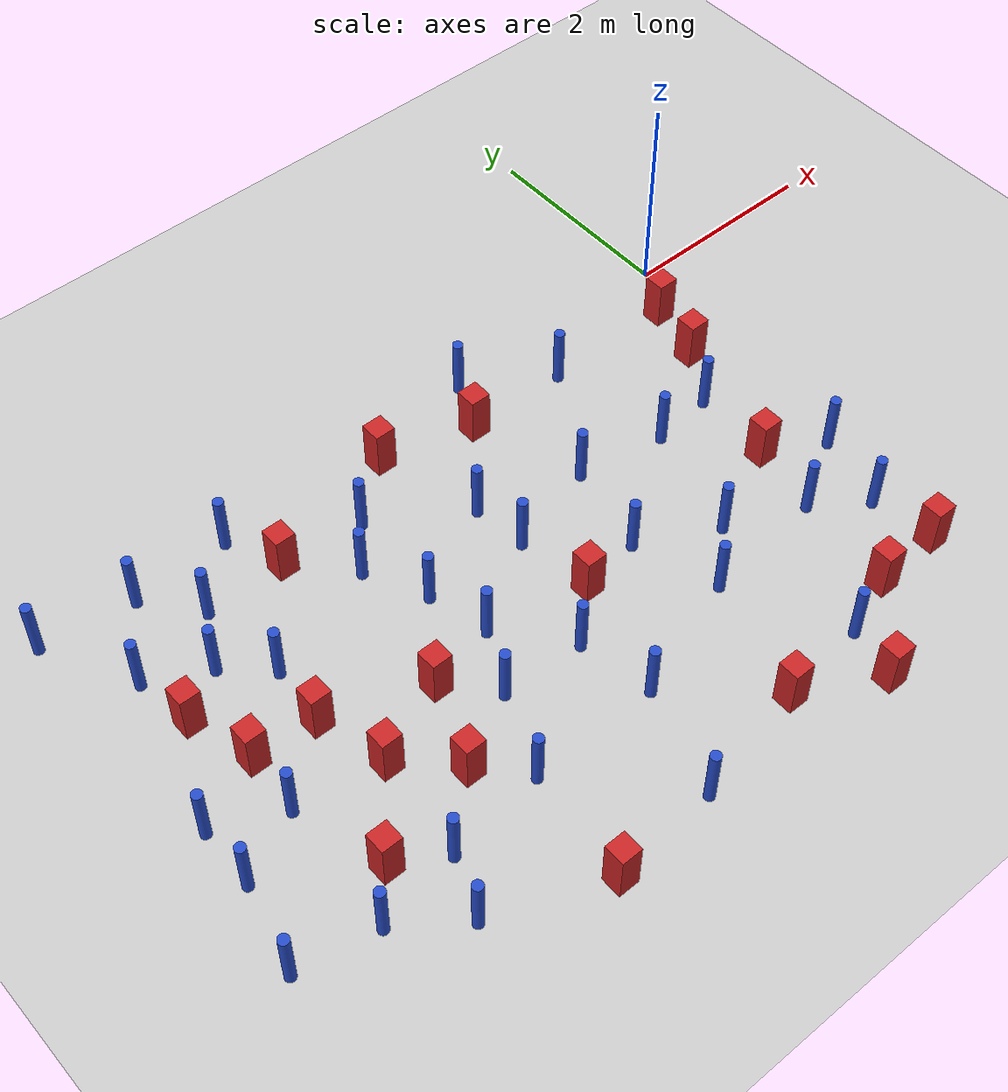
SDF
<sdf version="1.6">
 <world name="default">
  <model name="ground_plane">
   <static>1</static>
   <link name="link">
    <collision name="collision">
     <geometry><plane><normal>0 0 1</normal><size>100 100</size></plane></geometry>
     <surface><friction><ode><mu>100</mu><mu2>50</mu2></ode></friction></surface>
    </collision>
    <visual name="visual">
     <cast_shadows>0</cast_shadows>
     <geometry><plane><normal>0 0 1</normal><size>100 100</size></plane></geometry>
     <material>
      <ambient>1.0 1.0 1.0 1.0</ambient>
      <diffuse>0.8 0.8 0.8 1.0</diffuse>
      <specular>0.01 0.01 0.01 1.000000</specular>
     </material>
    </visual>
   </link>
  </model>
  <model name="pole_obstacle2">
   <static>true</static>
   <pose>-5.47846547494 -1.4591798869 2.88873142074e-08 -9.90536689445e-09 4.60219948999e-07 -1.20965994956e-07</pose>
   <link name="link">
    <pose>0 0 0.3 0 -0 0</pose>
    <inertial>
     <mass>1</mass>
     <inertia><ixx>0.145833</ixx><ixy>0</ixy><ixz>0</ixz><iyy>0.145833</iyy><iyz>0</iyz><izz>0.125</izz></inertia>
    </inertial>
    <collision name="collision">
     <geometry><cylinder><radius>0.05</radius><length>.6</length></cylinder></geometry>
    </collision>
    <visual name="visual">
     <geometry><cylinder><radius>0.05</radius><length>.6</length></cylinder></geometry>
     <material>
      <script><name>Gazebo/Blue</name><uri>file://media/materials/scripts/gazebo.material</uri></script>
     </material>
    </visual>
   </link>
  </model>
  <model name="pole_obstacle7">
   <static>true</static>
   <pose>-2.39501589239 -2.36706867355 2.88873142074e-08 -9.90536690232e-09 4.6021994898e-07 -1.20965994968e-07</pose>
   <link name="link">
    <pose>0 0 0.3 0 -0 0</pose>
    <inertial>
     <mass>1</mass>
     <inertia><ixx>0.145833</ixx><ixy>0</ixy><ixz>0</ixz><iyy>0.145833</iyy><iyz>0</iyz><izz>0.125</izz></inertia>
    </inertial>
    <collision name="collision">
     <geometry><cylinder><radius>0.05</radius><length>.6</length></cylinder></geometry>
    </collision>
    <visual name="visual">
     <geometry><cylinder><radius>0.05</radius><length>.6</length></cylinder></geometry>
     <material>
      <script><name>Gazebo/Blue</name><uri>file://media/materials/scripts/gazebo.material</uri></script>
     </material>
    </visual>
   </link>
  </model>
  <model name="pole_obstacle9">
   <static>true</static>
   <pose>-5.67694998414 -4.2069552184 2.88873142074e-08 -9.90536690842e-09 4.60219948965e-07 -1.20965994976e-07</pose>
   <link name="link">
    <pose>0 0 0.3 0 -0 0</pose>
    <inertial>
     <mass>1</mass>
     <inertia><ixx>0.145833</ixx><ixy>0</ixy><ixz>0</ixz><iyy>0.145833</iyy><iyz>0</iyz><izz>0.125</izz></inertia>
    </inertial>
    <collision name="collision">
     <geometry><cylinder><radius>0.05</radius><length>.6</length></cylinder></geometry>
    </collision>
    <visual name="visual">
     <geometry><cylinder><radius>0.05</radius><length>.6</length></cylinder></geometry>
     <material>
      <script><name>Gazebo/Blue</name><uri>file://media/materials/scripts/gazebo.material</uri></script>
     </material>
    </visual>
   </link>
  </model>
  <model name="pole_obstacle12">
   <static>true</static>
   <pose>-2.20198437938 -1.49410046 2.88873142074e-08 -9.90536689395e-09 4.60219949e-07 -1.20965994953e-07</pose>
   <link name="link">
    <pose>0 0 0.3 0 -0 0</pose>
    <inertial>
     <mass>1</mass>
     <inertia><ixx>0.145833</ixx><ixy>0</ixy><ixz>0</ixz><iyy>0.145833</iyy><iyz>0</iyz><izz>0.125</izz></inertia>
    </inertial>
    <collision name="collision">
     <geometry><cylinder><radius>0.05</radius><length>.6</length></cylinder></geometry>
    </collision>
    <visual name="visual">
     <geometry><cylinder><radius>0.05</radius><length>.6</length></cylinder></geometry>
     <material>
      <script><name>Gazebo/Blue</name><uri>file://media/materials/scripts/gazebo.material</uri></script>
     </material>
    </visual>
   </link>
  </model>
  <model name="pole_obstacle17">
   <static>true</static>
   <pose>-2.13248471283 -3.16546060111 2.88873142074e-08 -9.90536690232e-09 4.6021994898e-07 -1.20965994968e-07</pose>
   <link name="link">
    <pose>0 0 0.3 0 -0 0</pose>
    <inertial>
     <mass>1</mass>
     <inertia><ixx>0.145833</ixx><ixy>0</ixy><ixz>0</ixz><iyy>0.145833</iyy><iyz>0</iyz><izz>0.125</izz></inertia>
    </inertial>
    <collision name="collision">
     <geometry><cylinder><radius>0.05</radius><length>.6</length></cylinder></geometry>
    </collision>
    <visual name="visual">
     <geometry><cylinder><radius>0.05</radius><length>.6</length></cylinder></geometry>
     <material>
      <script><name>Gazebo/Blue</name><uri>file://media/materials/scripts/gazebo.material</uri></script>
     </material>
    </visual>
   </link>
  </model>
  <model name="square_post_obstacle14">
   <static>true</static>
   <pose>-0.396960825578 -3.98718183676 8.22691968438e-08 7.22125133819e-06 -7.54495500217e-07 2.29674213826e-05</pose>
   <link name="link">
    <pose>0 0 0.25 0 -0 0</pose>
    <inertial>
     <mass>100</mass>
     <inertia>
      <ixx>0.166667</ixx>
      <ixy>0</ixy>
      <ixz>0</ixz>
      <iyy>0.166667</iyy>
      <iyz>0</iyz>
      <izz>0.166667</izz>
     </inertia>
    </inertial>
    <collision name="collision"><geometry><box><size>.2 .2 .5</size></box></geometry></collision>
    <visual name="visual">
     <geometry><box><size>.2 .2 .5</size></box></geometry>
     <material>
      <script><name>Gazebo/Red</name><uri>file://media/materials/scripts/gazebo.material</uri></script>
     </material>
    </visual>
   </link>
  </model>
  <model name="pole_obstacle36">
   <static>true</static>
   <pose>-4.3431573789 -1.09699216679 2.88873142074e-08 -9.90536689445e-09 4.60219948999e-07 -1.20965994956e-07</pose>
   <link name="link">
    <pose>0 0 0.3 0 -0 0</pose>
    <inertial>
     <mass>1</mass>
     <inertia><ixx>0.145833</ixx><ixy>0</ixy><ixz>0</ixz><iyy>0.145833</iyy><iyz>0</iyz><izz>0.125</izz></inertia>
    </inertial>
    <collision name="collision">
     <geometry><cylinder><radius>0.05</radius><length>.6</length></cylinder></geometry>
    </collision>
    <visual name="visual">
     <geometry><cylinder><radius>0.05</radius><length>.6</length></cylinder></geometry>
     <material>
      <script><name>Gazebo/Blue</name><uri>file://media/materials/scripts/gazebo.material</uri></script>
     </material>
    </visual>
   </link>
  </model>
  <model name="pole_obstacle37">
   <static>true</static>
   <pose>-6.40705415362 -0.817425480912 2.88873142074e-08 -9.90536689837e-09 4.60219948989e-07 -1.2096599496e-07</pose>
   <link name="link">
    <pose>0 0 0.3 0 -0 0</pose>
    <inertial>
     <mass>1</mass>
     <inertia><ixx>0.145833</ixx><ixy>0</ixy><ixz>0</ixz><iyy>0.145833</iyy><iyz>0</iyz><izz>0.125</izz></inertia>
    </inertial>
    <collision name="collision">
     <geometry><cylinder><radius>0.05</radius><length>.6</length></cylinder></geometry>
    </collision>
    <visual name="visual">
     <geometry><cylinder><radius>0.05</radius><length>.6</length></cylinder></geometry>
     <material>
      <script><name>Gazebo/Blue</name><uri>file://media/materials/scripts/gazebo.material</uri></script>
     </material>
    </visual>
   </link>
  </model>
  <model name="pole_obstacle48">
   <static>true</static>
   <pose>-5.57795164293 -0.592030560609 2.88873142074e-08 -9.90536689837e-09 4.60219948989e-07 -1.2096599496e-07</pose>
   <link name="link">
    <pose>0 0 0.3 0 -0 0</pose>
    <inertial>
     <mass>1</mass>
     <inertia><ixx>0.145833</ixx><ixy>0</ixy><ixz>0</ixz><iyy>0.145833</iyy><iyz>0</iyz><izz>0.125</izz></inertia>
    </inertial>
    <collision name="collision">
     <geometry><cylinder><radius>0.05</radius><length>.6</length></cylinder></geometry>
    </collision>
    <visual name="visual">
     <geometry><cylinder><radius>0.05</radius><length>.6</length></cylinder></geometry>
     <material>
      <script><name>Gazebo/Blue</name><uri>file://media/materials/scripts/gazebo.material</uri></script>
     </material>
    </visual>
   </link>
  </model>
  <model name="pole_obstacle50">
   <static>true</static>
   <pose>-4.21921542562 -2.81185399373 2.88873142074e-08 -9.90536690245e-09 4.6021994898e-07 -1.20965994966e-07</pose>
   <link name="link">
    <pose>0 0 0.3 0 -0 0</pose>
    <inertial>
     <mass>1</mass>
     <inertia><ixx>0.145833</ixx><ixy>0</ixy><ixz>0</ixz><iyy>0.145833</iyy><iyz>0</iyz><izz>0.125</izz></inertia>
    </inertial>
    <collision name="collision">
     <geometry><cylinder><radius>0.05</radius><length>.6</length></cylinder></geometry>
    </collision>
    <visual name="visual">
     <geometry><cylinder><radius>0.05</radius><length>.6</length></cylinder></geometry>
     <material>
      <script><name>Gazebo/Blue</name><uri>file://media/materials/scripts/gazebo.material</uri></script>
     </material>
    </visual>
   </link>
  </model>
  <model name="pole_obstacle51">
   <static>true</static>
   <pose>-3.42958910382 -2.85291495817 2.88873142074e-08 -9.90536689597e-09 4.60219948995e-07 -1.20965994957e-07</pose>
   <link name="link">
    <pose>0 0 0.3 0 -0 0</pose>
    <inertial>
     <mass>1</mass>
     <inertia><ixx>0.145833</ixx><ixy>0</ixy><ixz>0</ixz><iyy>0.145833</iyy><iyz>0</iyz><izz>0.125</izz></inertia>
    </inertial>
    <collision name="collision">
     <geometry><cylinder><radius>0.05</radius><length>.6</length></cylinder></geometry>
    </collision>
    <visual name="visual">
     <geometry><cylinder><radius>0.05</radius><length>.6</length></cylinder></geometry>
     <material>
      <script><name>Gazebo/Blue</name><uri>file://media/materials/scripts/gazebo.material</uri></script>
     </material>
    </visual>
   </link>
  </model>
  <model name="pole_obstacle62">
   <static>true</static>
   <pose>-3.61412440753 -4.54910075798 2.88873142074e-08 -9.90536689859e-09 4.60219948989e-07 -1.20965994961e-07</pose>
   <link name="link">
    <pose>0 0 0.3 0 -0 0</pose>
    <inertial>
     <mass>1</mass>
     <inertia><ixx>0.145833</ixx><ixy>0</ixy><ixz>0</ixz><iyy>0.145833</iyy><iyz>0</iyz><izz>0.125</izz></inertia>
    </inertial>
    <collision name="collision">
     <geometry><cylinder><radius>0.05</radius><length>.6</length></cylinder></geometry>
    </collision>
    <visual name="visual">
     <geometry><cylinder><radius>0.05</radius><length>.6</length></cylinder></geometry>
     <material>
      <script><name>Gazebo/Blue</name><uri>file://media/materials/scripts/gazebo.material</uri></script>
     </material>
    </visual>
   </link>
  </model>
  <model name="square_post_obstacle49">
   <static>true</static>
   <pose>-2.56475902144 -0.460987065026 8.22691968438e-08 7.2212513382e-06 -7.54495500217e-07 2.29674213826e-05</pose>
   <link name="link">
    <pose>0 0 0.25 0 -0 0</pose>
    <inertial>
     <mass>100</mass>
     <inertia>
      <ixx>0.166667</ixx>
      <ixy>0</ixy>
      <ixz>0</ixz>
      <iyy>0.166667</iyy>
      <iyz>0</iyz>
      <izz>0.166667</izz>
     </inertia>
    </inertial>
    <collision name="collision"><geometry><box><size>.2 .2 .5</size></box></geometry></collision>
    <visual name="visual">
     <geometry><box><size>.2 .2 .5</size></box></geometry>
     <material>
      <script><name>Gazebo/Red</name><uri>file://media/materials/scripts/gazebo.material</uri></script>
     </material>
    </visual>
   </link>
  </model>
  <model name="square_post_obstacle53">
   <static>true</static>
   <pose>-1.06489842813 -4.03133479153 8.22691968438e-08 7.2212513382e-06 -7.54495500217e-07 2.29674213826e-05</pose>
   <link name="link">
    <pose>0 0 0.25 0 -0 0</pose>
    <inertial>
     <mass>100</mass>
     <inertia>
      <ixx>0.166667</ixx>
      <ixy>0</ixy>
      <ixz>0</ixz>
      <iyy>0.166667</iyy>
      <iyz>0</iyz>
      <izz>0.166667</izz>
     </inertia>
    </inertial>
    <collision name="collision"><geometry><box><size>.2 .2 .5</size></box></geometry></collision>
    <visual name="visual">
     <geometry><box><size>.2 .2 .5</size></box></geometry>
     <material>
      <script><name>Gazebo/Red</name><uri>file://media/materials/scripts/gazebo.material</uri></script>
     </material>
    </visual>
   </link>
  </model>
  <model name="pole_obstacle69">
   <static>true</static>
   <pose>-5.85827670572 -1.09774539539 2.88873142074e-08 -9.90536689445e-09 4.60219948999e-07 -1.20965994956e-07</pose>
   <link name="link">
    <pose>0 0 0.3 0 -0 0</pose>
    <inertial>
     <mass>1</mass>
     <inertia><ixx>0.145833</ixx><ixy>0</ixy><ixz>0</ixz><iyy>0.145833</iyy><iyz>0</iyz><izz>0.125</izz></inertia>
    </inertial>
    <collision name="collision">
     <geometry><cylinder><radius>0.05</radius><length>.6</length></cylinder></geometry>
    </collision>
    <visual name="visual">
     <geometry><cylinder><radius>0.05</radius><length>.6</length></cylinder></geometry>
     <material>
      <script><name>Gazebo/Blue</name><uri>file://media/materials/scripts/gazebo.material</uri></script>
     </material>
    </visual>
   </link>
  </model>
  <model name="square_post_obstacle63">
   <static>true</static>
   <pose>-0.441353842119 -1.06322872604 8.22691968438e-08 7.22125133819e-06 -7.54495500217e-07 2.29674213826e-05</pose>
   <link name="link">
    <pose>0 0 0.25 0 -0 0</pose>
    <inertial>
     <mass>100</mass>
     <inertia>
      <ixx>0.166667</ixx>
      <ixy>0</ixy>
      <ixz>0</ixz>
      <iyy>0.166667</iyy>
      <iyz>0</iyz>
      <izz>0.166667</izz>
     </inertia>
    </inertial>
    <collision name="collision"><geometry><box><size>.2 .2 .5</size></box></geometry></collision>
    <visual name="visual">
     <geometry><box><size>.2 .2 .5</size></box></geometry>
     <material>
      <script><name>Gazebo/Red</name><uri>file://media/materials/scripts/gazebo.material</uri></script>
     </material>
    </visual>
   </link>
  </model>
  <model name="square_post_obstacle69">
   <static>true</static>
   <pose>-2.98584578917 -2.44960622711 8.22691968438e-08 7.2212513382e-06 -7.54495500217e-07 2.29674213826e-05</pose>
   <link name="link">
    <pose>0 0 0.25 0 -0 0</pose>
    <inertial>
     <mass>100</mass>
     <inertia>
      <ixx>0.166667</ixx>
      <ixy>0</ixy>
      <ixz>0</ixz>
      <iyy>0.166667</iyy>
      <iyz>0</iyz>
      <izz>0.166667</izz>
     </inertia>
    </inertial>
    <collision name="collision"><geometry><box><size>.2 .2 .5</size></box></geometry></collision>
    <visual name="visual">
     <geometry><box><size>.2 .2 .5</size></box></geometry>
     <material>
      <script><name>Gazebo/Red</name><uri>file://media/materials/scripts/gazebo.material</uri></script>
     </material>
    </visual>
   </link>
  </model>
  <model name="square_post_obstacle73">
   <static>true</static>
   <pose>-4.59540827341 -2.39774058924 8.22691968438e-08 7.2212513382e-06 -7.54495500217e-07 2.29674213826e-05</pose>
   <link name="link">
    <pose>0 0 0.25 0 -0 0</pose>
    <inertial>
     <mass>100</mass>
     <inertia>
      <ixx>0.166667</ixx>
      <ixy>0</ixy>
      <ixz>0</ixz>
      <iyy>0.166667</iyy>
      <iyz>0</iyz>
      <izz>0.166667</izz>
     </inertia>
    </inertial>
    <collision name="collision"><geometry><box><size>.2 .2 .5</size></box></geometry></collision>
    <visual name="visual">
     <geometry><box><size>.2 .2 .5</size></box></geometry>
     <material>
      <script><name>Gazebo/Red</name><uri>file://media/materials/scripts/gazebo.material</uri></script>
     </material>
    </visual>
   </link>
  </model>
  <model name="square_post_obstacle74">
   <static>true</static>
   <pose>-5.9097521893 -3.41296863932 8.22691968438e-08 7.2212513382e-06 -7.54495500217e-07 2.29674213826e-05</pose>
   <link name="link">
    <pose>0 0 0.25 0 -0 0</pose>
    <inertial>
     <mass>100</mass>
     <inertia>
      <ixx>0.166667</ixx>
      <ixy>0</ixy>
      <ixz>0</ixz>
      <iyy>0.166667</iyy>
      <iyz>0</iyz>
      <izz>0.166667</izz>
     </inertia>
    </inertial>
    <collision name="collision"><geometry><box><size>.2 .2 .5</size></box></geometry></collision>
    <visual name="visual">
     <geometry><box><size>.2 .2 .5</size></box></geometry>
     <material>
      <script><name>Gazebo/Red</name><uri>file://media/materials/scripts/gazebo.material</uri></script>
     </material>
    </visual>
   </link>
  </model>
  <model name="pole_obstacle99">
   <static>true</static>
   <pose>-5.46050959873 -3.66921437932 2.88873142074e-08 -9.90536690245e-09 4.6021994898e-07 -1.20965994966e-07</pose>
   <link name="link">
    <pose>0 0 0.3 0 -0 0</pose>
    <inertial>
     <mass>1</mass>
     <inertia><ixx>0.145833</ixx><ixy>0</ixy><ixz>0</ixz><iyy>0.145833</iyy><iyz>0</iyz><izz>0.125</izz></inertia>
    </inertial>
    <collision name="collision">
     <geometry><cylinder><radius>0.05</radius><length>.6</length></cylinder></geometry>
    </collision>
    <visual name="visual">
     <geometry><cylinder><radius>0.05</radius><length>.6</length></cylinder></geometry>
     <material>
      <script><name>Gazebo/Blue</name><uri>file://media/materials/scripts/gazebo.material</uri></script>
     </material>
    </visual>
   </link>
  </model>
  <model name="pole_obstacle101">
   <static>true</static>
   <pose>-1.55824635545 -0.470808951213 2.88873142074e-08 -9.90536689816e-09 4.6021994899e-07 -1.2096599496e-07</pose>
   <link name="link">
    <pose>0 0 0.3 0 -0 0</pose>
    <inertial>
     <mass>1</mass>
     <inertia><ixx>0.145833</ixx><ixy>0</ixy><ixz>0</ixz><iyy>0.145833</iyy><iyz>0</iyz><izz>0.125</izz></inertia>
    </inertial>
    <collision name="collision">
     <geometry><cylinder><radius>0.05</radius><length>.6</length></cylinder></geometry>
    </collision>
    <visual name="visual">
     <geometry><cylinder><radius>0.05</radius><length>.6</length></cylinder></geometry>
     <material>
      <script><name>Gazebo/Blue</name><uri>file://media/materials/scripts/gazebo.material</uri></script>
     </material>
    </visual>
   </link>
  </model>
  <model name="pole_obstacle110">
   <static>true</static>
   <pose>-4.52986368785 -3.56269048437 2.88873142074e-08 -9.90536690245e-09 4.6021994898e-07 -1.20965994966e-07</pose>
   <link name="link">
    <pose>0 0 0.3 0 -0 0</pose>
    <inertial>
     <mass>1</mass>
     <inertia><ixx>0.145833</ixx><ixy>0</ixy><ixz>0</ixz><iyy>0.145833</iyy><iyz>0</iyz><izz>0.125</izz></inertia>
    </inertial>
    <collision name="collision">
     <geometry><cylinder><radius>0.05</radius><length>.6</length></cylinder></geometry>
    </collision>
    <visual name="visual">
     <geometry><cylinder><radius>0.05</radius><length>.6</length></cylinder></geometry>
     <material>
      <script><name>Gazebo/Blue</name><uri>file://media/materials/scripts/gazebo.material</uri></script>
     </material>
    </visual>
   </link>
  </model>
  <model name="pole_obstacle113">
   <static>true</static>
   <pose>-0.939949511306 -3.04380701879 2.88873142074e-08 -9.90536689636e-09 4.60219948994e-07 -1.20965994958e-07</pose>
   <link name="link">
    <pose>0 0 0.3 0 -0 0</pose>
    <inertial>
     <mass>1</mass>
     <inertia><ixx>0.145833</ixx><ixy>0</ixy><ixz>0</ixz><iyy>0.145833</iyy><iyz>0</iyz><izz>0.125</izz></inertia>
    </inertial>
    <collision name="collision">
     <geometry><cylinder><radius>0.05</radius><length>.6</length></cylinder></geometry>
    </collision>
    <visual name="visual">
     <geometry><cylinder><radius>0.05</radius><length>.6</length></cylinder></geometry>
     <material>
      <script><name>Gazebo/Blue</name><uri>file://media/materials/scripts/gazebo.material</uri></script>
     </material>
    </visual>
   </link>
  </model>
  <model name="square_post_obstacle118">
   <static>true</static>
   <pose>-4.81098748998 -0.602729627563 8.22691968438e-08 7.2212513382e-06 -7.54495500217e-07 2.29674213826e-05</pose>
   <link name="link">
    <pose>0 0 0.25 0 -0 0</pose>
    <inertial>
     <mass>100</mass>
     <inertia>
      <ixx>0.166667</ixx>
      <ixy>0</ixy>
      <ixz>0</ixz>
      <iyy>0.166667</iyy>
      <iyz>0</iyz>
      <izz>0.166667</izz>
     </inertia>
    </inertial>
    <collision name="collision"><geometry><box><size>.2 .2 .5</size></box></geometry></collision>
    <visual name="visual">
     <geometry><box><size>.2 .2 .5</size></box></geometry>
     <material>
      <script><name>Gazebo/Red</name><uri>file://media/materials/scripts/gazebo.material</uri></script>
     </material>
    </visual>
   </link>
  </model>
  <model name="pole_obstacle118">
   <static>true</static>
   <pose>-3.3009172358 -3.55679530675 2.88873142074e-08 -9.90536690232e-09 4.6021994898e-07 -1.20965994968e-07</pose>
   <link name="link">
    <pose>0 0 0.3 0 -0 0</pose>
    <inertial>
     <mass>1</mass>
     <inertia><ixx>0.145833</ixx><ixy>0</ixy><ixz>0</ixz><iyy>0.145833</iyy><iyz>0</iyz><izz>0.125</izz></inertia>
    </inertial>
    <collision name="collision">
     <geometry><cylinder><radius>0.05</radius><length>.6</length></cylinder></geometry>
    </collision>
    <visual name="visual">
     <geometry><cylinder><radius>0.05</radius><length>.6</length></cylinder></geometry>
     <material>
      <script><name>Gazebo/Blue</name><uri>file://media/materials/scripts/gazebo.material</uri></script>
     </material>
    </visual>
   </link>
  </model>
  <model name="pole_obstacle123">
   <static>true</static>
   <pose>-5.04307198198 -0.0760159153711 2.88873142074e-08 -9.90536689832e-09 4.60219948989e-07 -1.20965994961e-07</pose>
   <link name="link">
    <pose>0 0 0.3 0 -0 0</pose>
    <inertial>
     <mass>1</mass>
     <inertia><ixx>0.145833</ixx><ixy>0</ixy><ixz>0</ixz><iyy>0.145833</iyy><iyz>0</iyz><izz>0.125</izz></inertia>
    </inertial>
    <collision name="collision">
     <geometry><cylinder><radius>0.05</radius><length>.6</length></cylinder></geometry>
    </collision>
    <visual name="visual">
     <geometry><cylinder><radius>0.05</radius><length>.6</length></cylinder></geometry>
     <material>
      <script><name>Gazebo/Blue</name><uri>file://media/materials/scripts/gazebo.material</uri></script>
     </material>
    </visual>
   </link>
  </model>
  <model name="square_post_obstacle122">
   <static>true</static>
   <pose>-2.48674102991 -4.33081825324 8.22691968438e-08 7.22125133819e-06 -7.54495500217e-07 2.29674213826e-05</pose>
   <link name="link">
    <pose>0 0 0.25 0 -0 0</pose>
    <inertial>
     <mass>100</mass>
     <inertia>
      <ixx>0.166667</ixx>
      <ixy>0</ixy>
      <ixz>0</ixz>
      <iyy>0.166667</iyy>
      <iyz>0</iyz>
      <izz>0.166667</izz>
     </inertia>
    </inertial>
    <collision name="collision"><geometry><box><size>.2 .2 .5</size></box></geometry></collision>
    <visual name="visual">
     <geometry><box><size>.2 .2 .5</size></box></geometry>
     <material>
      <script><name>Gazebo/Red</name><uri>file://media/materials/scripts/gazebo.material</uri></script>
     </material>
    </visual>
   </link>
  </model>
  <model name="pole_obstacle128">
   <static>true</static>
   <pose>-4.06746602348 -1.66510723186 2.88873142074e-08 -9.90536689445e-09 4.60219948999e-07 -1.20965994956e-07</pose>
   <link name="link">
    <pose>0 0 0.3 0 -0 0</pose>
    <inertial>
     <mass>1</mass>
     <inertia><ixx>0.145833</ixx><ixy>0</ixy><ixz>0</ixz><iyy>0.145833</iyy><iyz>0</iyz><izz>0.125</izz></inertia>
    </inertial>
    <collision name="collision">
     <geometry><cylinder><radius>0.05</radius><length>.6</length></cylinder></geometry>
    </collision>
    <visual name="visual">
     <geometry><cylinder><radius>0.05</radius><length>.6</length></cylinder></geometry>
     <material>
      <script><name>Gazebo/Blue</name><uri>file://media/materials/scripts/gazebo.material</uri></script>
     </material>
    </visual>
   </link>
  </model>
  <model name="pole_obstacle129">
   <static>true</static>
   <pose>-3.16180960516 -1.21303920709 2.88873142074e-08 -9.90536689395e-09 4.60219949e-07 -1.20965994953e-07</pose>
   <link name="link">
    <pose>0 0 0.3 0 -0 0</pose>
    <inertial>
     <mass>1</mass>
     <inertia><ixx>0.145833</ixx><ixy>0</ixy><ixz>0</ixz><iyy>0.145833</iyy><iyz>0</iyz><izz>0.125</izz></inertia>
    </inertial>
    <collision name="collision">
     <geometry><cylinder><radius>0.05</radius><length>.6</length></cylinder></geometry>
    </collision>
    <visual name="visual">
     <geometry><cylinder><radius>0.05</radius><length>.6</length></cylinder></geometry>
     <material>
      <script><name>Gazebo/Blue</name><uri>file://media/materials/scripts/gazebo.material</uri></script>
     </material>
    </visual>
   </link>
  </model>
  <model name="pole_obstacle130">
   <static>true</static>
   <pose>-6.84844571352 0.0236423939409 2.88873142074e-08 -9.90536689189e-09 4.60219949005e-07 -1.20965994952e-07</pose>
   <link name="link">
    <pose>0 0 0.3 0 -0 0</pose>
    <inertial>
     <mass>1</mass>
     <inertia><ixx>0.145833</ixx><ixy>0</ixy><ixz>0</ixz><iyy>0.145833</iyy><iyz>0</iyz><izz>0.125</izz></inertia>
    </inertial>
    <collision name="collision">
     <geometry><cylinder><radius>0.05</radius><length>.6</length></cylinder></geometry>
    </collision>
    <visual name="visual">
     <geometry><cylinder><radius>0.05</radius><length>.6</length></cylinder></geometry>
     <material>
      <script><name>Gazebo/Blue</name><uri>file://media/materials/scripts/gazebo.material</uri></script>
     </material>
    </visual>
   </link>
  </model>
  <model name="square_post_obstacle127">
   <static>true</static>
   <pose>-0.289211515288 -0.485404636217 8.22691968438e-08 7.2212513382e-06 -7.54495500217e-07 2.29674213826e-05</pose>
   <link name="link">
    <pose>0 0 0.25 0 -0 0</pose>
    <inertial>
     <mass>100</mass>
     <inertia>
      <ixx>0.166667</ixx>
      <ixy>0</ixy>
      <ixz>0</ixz>
      <iyy>0.166667</iyy>
      <iyz>0</iyz>
      <izz>0.166667</izz>
     </inertia>
    </inertial>
    <collision name="collision"><geometry><box><size>.2 .2 .5</size></box></geometry></collision>
    <visual name="visual">
     <geometry><box><size>.2 .2 .5</size></box></geometry>
     <material>
      <script><name>Gazebo/Red</name><uri>file://media/materials/scripts/gazebo.material</uri></script>
     </material>
    </visual>
   </link>
  </model>
  <model name="pole_obstacle132">
   <static>true</static>
   <pose>-1.35660741516 -1.63976221414 2.88873142074e-08 -9.90536689672e-09 4.60219948993e-07 -1.20965994959e-07</pose>
   <link name="link">
    <pose>0 0 0.3 0 -0 0</pose>
    <inertial>
     <mass>1</mass>
     <inertia><ixx>0.145833</ixx><ixy>0</ixy><ixz>0</ixz><iyy>0.145833</iyy><iyz>0</iyz><izz>0.125</izz></inertia>
    </inertial>
    <collision name="collision">
     <geometry><cylinder><radius>0.05</radius><length>.6</length></cylinder></geometry>
    </collision>
    <visual name="visual">
     <geometry><cylinder><radius>0.05</radius><length>.6</length></cylinder></geometry>
     <material>
      <script><name>Gazebo/Blue</name><uri>file://media/materials/scripts/gazebo.material</uri></script>
     </material>
    </visual>
   </link>
  </model>
  <model name="pole_obstacle134">
   <static>true</static>
   <pose>-6.79554172704 -2.84885602491 2.88873142074e-08 -9.90536690245e-09 4.6021994898e-07 -1.20965994966e-07</pose>
   <link name="link">
    <pose>0 0 0.3 0 -0 0</pose>
    <inertial>
     <mass>1</mass>
     <inertia><ixx>0.145833</ixx><ixy>0</ixy><ixz>0</ixz><iyy>0.145833</iyy><iyz>0</iyz><izz>0.125</izz></inertia>
    </inertial>
    <collision name="collision">
     <geometry><cylinder><radius>0.05</radius><length>.6</length></cylinder></geometry>
    </collision>
    <visual name="visual">
     <geometry><cylinder><radius>0.05</radius><length>.6</length></cylinder></geometry>
     <material>
      <script><name>Gazebo/Blue</name><uri>file://media/materials/scripts/gazebo.material</uri></script>
     </material>
    </visual>
   </link>
  </model>
  <model name="square_post_obstacle140">
   <static>true</static>
   <pose>-3.45389963779 -0.224930681381 8.22691968438e-08 7.2212513382e-06 -7.54495500217e-07 2.29674213826e-05</pose>
   <link name="link">
    <pose>0 0 0.25 0 -0 0</pose>
    <inertial>
     <mass>100</mass>
     <inertia>
      <ixx>0.166667</ixx>
      <ixy>0</ixy>
      <ixz>0</ixz>
      <iyy>0.166667</iyy>
      <iyz>0</iyz>
      <izz>0.166667</izz>
     </inertia>
    </inertial>
    <collision name="collision"><geometry><box><size>.2 .2 .5</size></box></geometry></collision>
    <visual name="visual">
     <geometry><box><size>.2 .2 .5</size></box></geometry>
     <material>
      <script><name>Gazebo/Red</name><uri>file://media/materials/scripts/gazebo.material</uri></script>
     </material>
    </visual>
   </link>
  </model>
  <model name="pole_obstacle147">
   <static>true</static>
   <pose>-0.2610369099 -2.65838530367 2.88873142074e-08 -9.90536689433e-09 4.60219948999e-07 -1.20965994955e-07</pose>
   <link name="link">
    <pose>0 0 0.3 0 -0 0</pose>
    <inertial>
     <mass>1</mass>
     <inertia><ixx>0.145833</ixx><ixy>0</ixy><ixz>0</ixz><iyy>0.145833</iyy><iyz>0</iyz><izz>0.125</izz></inertia>
    </inertial>
    <collision name="collision">
     <geometry><cylinder><radius>0.05</radius><length>.6</length></cylinder></geometry>
    </collision>
    <visual name="visual">
     <geometry><cylinder><radius>0.05</radius><length>.6</length></cylinder></geometry>
     <material>
      <script><name>Gazebo/Blue</name><uri>file://media/materials/scripts/gazebo.material</uri></script>
     </material>
    </visual>
   </link>
  </model>
  <model name="pole_obstacle148">
   <static>true</static>
   <pose>-2.3514994561 0.0164023264302 2.88873142074e-08 -9.90536692241e-09 4.60219948932e-07 -1.20965994987e-07</pose>
   <link name="link">
    <pose>0 0 0.3 0 -0 0</pose>
    <inertial>
     <mass>1</mass>
     <inertia><ixx>0.145833</ixx><ixy>0</ixy><ixz>0</ixz><iyy>0.145833</iyy><iyz>0</iyz><izz>0.125</izz></inertia>
    </inertial>
    <collision name="collision">
     <geometry><cylinder><radius>0.05</radius><length>.6</length></cylinder></geometry>
    </collision>
    <visual name="visual">
     <geometry><cylinder><radius>0.05</radius><length>.6</length></cylinder></geometry>
     <material>
      <script><name>Gazebo/Blue</name><uri>file://media/materials/scripts/gazebo.material</uri></script>
     </material>
    </visual>
   </link>
  </model>
  <model name="pole_obstacle150">
   <static>true</static>
   <pose>-6.7829118817 -2.27944651207 2.88873142074e-08 -9.90536690245e-09 4.6021994898e-07 -1.20965994966e-07</pose>
   <link name="link">
    <pose>0 0 0.3 0 -0 0</pose>
    <inertial>
     <mass>1</mass>
     <inertia><ixx>0.145833</ixx><ixy>0</ixy><ixz>0</ixz><iyy>0.145833</iyy><iyz>0</iyz><izz>0.125</izz></inertia>
    </inertial>
    <collision name="collision">
     <geometry><cylinder><radius>0.05</radius><length>.6</length></cylinder></geometry>
    </collision>
    <visual name="visual">
     <geometry><cylinder><radius>0.05</radius><length>.6</length></cylinder></geometry>
     <material>
      <script><name>Gazebo/Blue</name><uri>file://media/materials/scripts/gazebo.material</uri></script>
     </material>
    </visual>
   </link>
  </model>
  <model name="square_post_obstacle151">
   <static>true</static>
   <pose>-1.7404287089 -4.72506650002 8.22691968438e-08 7.2212513382e-06 -7.54495500217e-07 2.29674213826e-05</pose>
   <link name="link">
    <pose>0 0 0.25 0 -0 0</pose>
    <inertial>
     <mass>100</mass>
     <inertia>
      <ixx>0.166667</ixx>
      <ixy>0</ixy>
      <ixz>0</ixz>
      <iyy>0.166667</iyy>
      <iyz>0</iyz>
      <izz>0.166667</izz>
     </inertia>
    </inertial>
    <collision name="collision"><geometry><box><size>.2 .2 .5</size></box></geometry></collision>
    <visual name="visual">
     <geometry><box><size>.2 .2 .5</size></box></geometry>
     <material>
      <script><name>Gazebo/Red</name><uri>file://media/materials/scripts/gazebo.material</uri></script>
     </material>
    </visual>
   </link>
  </model>
  <model name="pole_obstacle155">
   <static>true</static>
   <pose>-5.97007872006 -0.10132155518 2.88873142074e-08 -9.90536689832e-09 4.60219948989e-07 -1.20965994961e-07</pose>
   <link name="link">
    <pose>0 0 0.3 0 -0 0</pose>
    <inertial>
     <mass>1</mass>
     <inertia><ixx>0.145833</ixx><ixy>0</ixy><ixz>0</ixz><iyy>0.145833</iyy><iyz>0</iyz><izz>0.125</izz></inertia>
    </inertial>
    <collision name="collision">
     <geometry><cylinder><radius>0.05</radius><length>.6</length></cylinder></geometry>
    </collision>
    <visual name="visual">
     <geometry><cylinder><radius>0.05</radius><length>.6</length></cylinder></geometry>
     <material>
      <script><name>Gazebo/Blue</name><uri>file://media/materials/scripts/gazebo.material</uri></script>
     </material>
    </visual>
   </link>
  </model>
  <model name="square_post_obstacle167">
   <static>true</static>
   <pose>-5.35304037861 -2.71285380908 8.22691968438e-08 7.2212513382e-06 -7.54495500217e-07 2.29674213826e-05</pose>
   <link name="link">
    <pose>0 0 0.25 0 -0 0</pose>
    <inertial>
     <mass>100</mass>
     <inertia>
      <ixx>0.166667</ixx>
      <ixy>0</ixy>
      <ixz>0</ixz>
      <iyy>0.166667</iyy>
      <iyz>0</iyz>
      <izz>0.166667</izz>
     </inertia>
    </inertial>
    <collision name="collision"><geometry><box><size>.2 .2 .5</size></box></geometry></collision>
    <visual name="visual">
     <geometry><box><size>.2 .2 .5</size></box></geometry>
     <material>
      <script><name>Gazebo/Red</name><uri>file://media/materials/scripts/gazebo.material</uri></script>
     </material>
    </visual>
   </link>
  </model>
  <model name="pole_obstacle169">
   <static>true</static>
   <pose>-4.01580489357 -0.672678152071 2.88873142074e-08 -9.90536690176e-09 4.60219948981e-07 -1.20965994965e-07</pose>
   <link name="link">
    <pose>0 0 0.3 0 -0 0</pose>
    <inertial>
     <mass>1</mass>
     <inertia><ixx>0.145833</ixx><ixy>0</ixy><ixz>0</ixz><iyy>0.145833</iyy><iyz>0</iyz><izz>0.125</izz></inertia>
    </inertial>
    <collision name="collision">
     <geometry><cylinder><radius>0.05</radius><length>.6</length></cylinder></geometry>
    </collision>
    <visual name="visual">
     <geometry><cylinder><radius>0.05</radius><length>.6</length></cylinder></geometry>
     <material>
      <script><name>Gazebo/Blue</name><uri>file://media/materials/scripts/gazebo.material</uri></script>
     </material>
    </visual>
   </link>
  </model>
  <model name="square_post_obstacle174">
   <static>true</static>
   <pose>-6.12658309359 -2.00029901846 8.22691968438e-08 7.22125133819e-06 -7.54495500217e-07 2.29674213826e-05</pose>
   <link name="link">
    <pose>0 0 0.25 0 -0 0</pose>
    <inertial>
     <mass>100</mass>
     <inertia>
      <ixx>0.166667</ixx>
      <ixy>0</ixy>
      <ixz>0</ixz>
      <iyy>0.166667</iyy>
      <iyz>0</iyz>
      <izz>0.166667</izz>
     </inertia>
    </inertial>
    <collision name="collision"><geometry><box><size>.2 .2 .5</size></box></geometry></collision>
    <visual name="visual">
     <geometry><box><size>.2 .2 .5</size></box></geometry>
     <material>
      <script><name>Gazebo/Red</name><uri>file://media/materials/scripts/gazebo.material</uri></script>
     </material>
    </visual>
   </link>
  </model>
  <model name="pole_obstacle177">
   <static>true</static>
   <pose>-6.98656998374 -3.640925361 2.88873142074e-08 -9.90536690245e-09 4.6021994898e-07 -1.20965994966e-07</pose>
   <link name="link">
    <pose>0 0 0.3 0 -0 0</pose>
    <inertial>
     <mass>1</mass>
     <inertia><ixx>0.145833</ixx><ixy>0</ixy><ixz>0</ixz><iyy>0.145833</iyy><iyz>0</iyz><izz>0.125</izz></inertia>
    </inertial>
    <collision name="collision">
     <geometry><cylinder><radius>0.05</radius><length>.6</length></cylinder></geometry>
    </collision>
    <visual name="visual">
     <geometry><cylinder><radius>0.05</radius><length>.6</length></cylinder></geometry>
     <material>
      <script><name>Gazebo/Blue</name><uri>file://media/materials/scripts/gazebo.material</uri></script>
     </material>
    </visual>
   </link>
  </model>
  <model name="square_post_obstacle178">
   <static>true</static>
   <pose>-4.63361488822 -4.63018524553 8.22691968438e-08 7.2212513382e-06 -7.54495500217e-07 2.29674213826e-05</pose>
   <link name="link">
    <pose>0 0 0.25 0 -0 0</pose>
    <inertial>
     <mass>100</mass>
     <inertia>
      <ixx>0.166667</ixx>
      <ixy>0</ixy>
      <ixz>0</ixz>
      <iyy>0.166667</iyy>
      <iyz>0</iyz>
      <izz>0.166667</izz>
     </inertia>
    </inertial>
    <collision name="collision"><geometry><box><size>.2 .2 .5</size></box></geometry></collision>
    <visual name="visual">
     <geometry><box><size>.2 .2 .5</size></box></geometry>
     <material>
      <script><name>Gazebo/Red</name><uri>file://media/materials/scripts/gazebo.material</uri></script>
     </material>
    </visual>
   </link>
  </model>
  <model name="pole_obstacle180">
   <static>true</static>
   <pose>-6.16491337399 -2.55816176344 2.88873142074e-08 -9.90536690245e-09 4.6021994898e-07 -1.20965994966e-07</pose>
   <link name="link">
    <pose>0 0 0.3 0 -0 0</pose>
    <inertial>
     <mass>1</mass>
     <inertia><ixx>0.145833</ixx><ixy>0</ixy><ixz>0</ixz><iyy>0.145833</iyy><iyz>0</iyz><izz>0.125</izz></inertia>
    </inertial>
    <collision name="collision">
     <geometry><cylinder><radius>0.05</radius><length>.6</length></cylinder></geometry>
    </collision>
    <visual name="visual">
     <geometry><cylinder><radius>0.05</radius><length>.6</length></cylinder></geometry>
     <material>
      <script><name>Gazebo/Blue</name><uri>file://media/materials/scripts/gazebo.material</uri></script>
     </material>
    </visual>
   </link>
  </model>
  <model name="pole_obstacle181">
   <static>true</static>
   <pose>-1.66599348237 -2.7374067306 2.88873142074e-08 -9.90536689791e-09 4.6021994899e-07 -1.20965994959e-07</pose>
   <link name="link">
    <pose>0 0 0.3 0 -0 0</pose>
    <inertial>
     <mass>1</mass>
     <inertia><ixx>0.145833</ixx><ixy>0</ixy><ixz>0</ixz><iyy>0.145833</iyy><iyz>0</iyz><izz>0.125</izz></inertia>
    </inertial>
    <collision name="collision">
     <geometry><cylinder><radius>0.05</radius><length>.6</length></cylinder></geometry>
    </collision>
    <visual name="visual">
     <geometry><cylinder><radius>0.05</radius><length>.6</length></cylinder></geometry>
     <material>
      <script><name>Gazebo/Blue</name><uri>file://media/materials/scripts/gazebo.material</uri></script>
     </material>
    </visual>
   </link>
  </model>
  <model name="square_post_obstacle191">
   <static>true</static>
   <pose>-6.30847685831 -1.38246708925 8.22691968438e-08 7.2212513382e-06 -7.54495500217e-07 2.29674213826e-05</pose>
   <link name="link">
    <pose>0 0 0.25 0 -0 0</pose>
    <inertial>
     <mass>100</mass>
     <inertia>
      <ixx>0.166667</ixx>
      <ixy>0</ixy>
      <ixz>0</ixz>
      <iyy>0.166667</iyy>
      <iyz>0</iyz>
      <izz>0.166667</izz>
     </inertia>
    </inertial>
    <collision name="collision"><geometry><box><size>.2 .2 .5</size></box></geometry></collision>
    <visual name="visual">
     <geometry><box><size>.2 .2 .5</size></box></geometry>
     <material>
      <script><name>Gazebo/Red</name><uri>file://media/materials/scripts/gazebo.material</uri></script>
     </material>
    </visual>
   </link>
  </model>
  <model name="pole_obstacle189">
   <static>true</static>
   <pose>-3.10211035371 -1.73841581529 2.88873142074e-08 -9.90536689395e-09 4.60219949e-07 -1.20965994953e-07</pose>
   <link name="link">
    <pose>0 0 0.3 0 -0 0</pose>
    <inertial>
     <mass>1</mass>
     <inertia><ixx>0.145833</ixx><ixy>0</ixy><ixz>0</ixz><iyy>0.145833</iyy><iyz>0</iyz><izz>0.125</izz></inertia>
    </inertial>
    <collision name="collision">
     <geometry><cylinder><radius>0.05</radius><length>.6</length></cylinder></geometry>
    </collision>
    <visual name="visual">
     <geometry><cylinder><radius>0.05</radius><length>.6</length></cylinder></geometry>
     <material>
      <script><name>Gazebo/Blue</name><uri>file://media/materials/scripts/gazebo.material</uri></script>
     </material>
    </visual>
   </link>
  </model>
  <model name="square_post_obstacle198">
   <static>true</static>
   <pose>-5.53170264176 -2.04550514812 8.22691968438e-08 7.2212513382e-06 -7.54495500217e-07 2.29674213826e-05</pose>
   <link name="link">
    <pose>0 0 0.25 0 -0 0</pose>
    <inertial>
     <mass>100</mass>
     <inertia>
      <ixx>0.166667</ixx>
      <ixy>0</ixy>
      <ixz>0</ixz>
      <iyy>0.166667</iyy>
      <iyz>0</iyz>
      <izz>0.166667</izz>
     </inertia>
    </inertial>
    <collision name="collision"><geometry><box><size>.2 .2 .5</size></box></geometry></collision>
    <visual name="visual">
     <geometry><box><size>.2 .2 .5</size></box></geometry>
     <material>
      <script><name>Gazebo/Red</name><uri>file://media/materials/scripts/gazebo.material</uri></script>
     </material>
    </visual>
   </link>
  </model>
  <model name="square_post_obstacle200">
   <static>true</static>
   <pose>-0.814932834211 -2.3588076612 8.22691968438e-08 7.2212513382e-06 -7.54495500217e-07 2.29674213826e-05</pose>
   <link name="link">
    <pose>0 0 0.25 0 -0 0</pose>
    <inertial>
     <mass>100</mass>
     <inertia>
      <ixx>0.166667</ixx>
      <ixy>0</ixy>
      <ixz>0</ixz>
      <iyy>0.166667</iyy>
      <iyz>0</iyz>
      <izz>0.166667</izz>
     </inertia>
    </inertial>
    <collision name="collision"><geometry><box><size>.2 .2 .5</size></box></geometry></collision>
    <visual name="visual">
     <geometry><box><size>.2 .2 .5</size></box></geometry>
     <material>
      <script><name>Gazebo/Red</name><uri>file://media/materials/scripts/gazebo.material</uri></script>
     </material>
    </visual>
   </link>
  </model>
  <model name="pole_obstacle191">
   <static>true</static>
   <pose>-1.61662714035 -4.23132839153 2.88873142074e-08 -9.90536689852e-09 4.60219948989e-07 -1.2096599496e-07</pose>
   <link name="link">
    <pose>0 0 0.3 0 -0 0</pose>
    <inertial>
     <mass>1</mass>
     <inertia><ixx>0.145833</ixx><ixy>0</ixy><ixz>0</ixz><iyy>0.145833</iyy><iyz>0</iyz><izz>0.125</izz></inertia>
    </inertial>
    <collision name="collision">
     <geometry><cylinder><radius>0.05</radius><length>.6</length></cylinder></geometry>
    </collision>
    <visual name="visual">
     <geometry><cylinder><radius>0.05</radius><length>.6</length></cylinder></geometry>
     <material>
      <script><name>Gazebo/Blue</name><uri>file://media/materials/scripts/gazebo.material</uri></script>
     </material>
    </visual>
   </link>
  </model>
  <model name="pole_obstacle203">
   <static>true</static>
   <pose>-6.24276583264 -3.78959722824 2.88873142074e-08 -9.90536690245e-09 4.6021994898e-07 -1.20965994966e-07</pose>
   <link name="link">
    <pose>0 0 0.3 0 -0 0</pose>
    <inertial>
     <mass>1</mass>
     <inertia><ixx>0.145833</ixx><ixy>0</ixy><ixz>0</ixz><iyy>0.145833</iyy><iyz>0</iyz><izz>0.125</izz></inertia>
    </inertial>
    <collision name="collision">
     <geometry><cylinder><radius>0.05</radius><length>.6</length></cylinder></geometry>
    </collision>
    <visual name="visual">
     <geometry><cylinder><radius>0.05</radius><length>.6</length></cylinder></geometry>
     <material>
      <script><name>Gazebo/Blue</name><uri>file://media/materials/scripts/gazebo.material</uri></script>
     </material>
    </visual>
   </link>
  </model>
  <model name="square_post_obstacle220">
   <static>true</static>
   <pose>-4.89872444514 -3.17161703309 8.22691968438e-08 7.2212513382e-06 -7.54495500217e-07 2.29674213826e-05</pose>
   <link name="link">
    <pose>0 0 0.25 0 -0 0</pose>
    <inertial>
     <mass>100</mass>
     <inertia>
      <ixx>0.166667</ixx>
      <ixy>0</ixy>
      <ixz>0</ixz>
      <iyy>0.166667</iyy>
      <iyz>0</iyz>
      <izz>0.166667</izz>
     </inertia>
    </inertial>
    <collision name="collision"><geometry><box><size>.2 .2 .5</size></box></geometry></collision>
    <visual name="visual">
     <geometry><box><size>.2 .2 .5</size></box></geometry>
     <material>
      <script><name>Gazebo/Red</name><uri>file://media/materials/scripts/gazebo.material</uri></script>
     </material>
    </visual>
   </link>
  </model>
  <model name="pole_obstacle208">
   <static>true</static>
   <pose>-0.762039990867 -1.57763997959 2.88873142074e-08 -9.90536689712e-09 4.60219948992e-07 -1.2096599496e-07</pose>
   <link name="link">
    <pose>0 0 0.3 0 -0 0</pose>
    <inertial>
     <mass>1</mass>
     <inertia><ixx>0.145833</ixx><ixy>0</ixy><ixz>0</ixz><iyy>0.145833</iyy><iyz>0</iyz><izz>0.125</izz></inertia>
    </inertial>
    <collision name="collision">
     <geometry><cylinder><radius>0.05</radius><length>.6</length></cylinder></geometry>
    </collision>
    <visual name="visual">
     <geometry><cylinder><radius>0.05</radius><length>.6</length></cylinder></geometry>
     <material>
      <script><name>Gazebo/Blue</name><uri>file://media/materials/scripts/gazebo.material</uri></script>
     </material>
    </visual>
   </link>
  </model>
  <model name="pole_obstacle213">
   <static>true</static>
   <pose>-0.468597990867 -3.38727997959 2.88873142074e-08 -9.90536691939e-09 4.60219948939e-07 -1.20965994982e-07</pose>
   <link name="link">
    <pose>0 0 0.3 0 -0 0</pose>
    <inertial>
     <mass>1</mass>
     <inertia><ixx>0.145833</ixx><ixy>0</ixy><ixz>0</ixz><iyy>0.145833</iyy><iyz>0</iyz><izz>0.125</izz></inertia>
    </inertial>
    <collision name="collision">
     <geometry><cylinder><radius>0.05</radius><length>.6</length></cylinder></geometry>
    </collision>
    <visual name="visual">
     <geometry><cylinder><radius>0.05</radius><length>.6</length></cylinder></geometry>
     <material>
      <script><name>Gazebo/Blue</name><uri>file://media/materials/scripts/gazebo.material</uri></script>
     </material>
    </visual>
   </link>
  </model>
  <model name="pole_obstacle222">
   <static>true</static>
   <pose>-3.92949999087 -2.24675997959 2.88873142074e-08 -9.90536690232e-09 4.6021994898e-07 -1.20965994968e-07</pose>
   <link name="link">
    <pose>0 0 0.3 0 -0 0</pose>
    <inertial>
     <mass>1</mass>
     <inertia><ixx>0.145833</ixx><ixy>0</ixy><ixz>0</ixz><iyy>0.145833</iyy><iyz>0</iyz><izz>0.125</izz></inertia>
    </inertial>
    <collision name="collision">
     <geometry><cylinder><radius>0.05</radius><length>.6</length></cylinder></geometry>
    </collision>
    <visual name="visual">
     <geometry><cylinder><radius>0.05</radius><length>.6</length></cylinder></geometry>
     <material>
      <script><name>Gazebo/Blue</name><uri>file://media/materials/scripts/gazebo.material</uri></script>
     </material>
    </visual>
   </link>
  </model>
 </world>
</sdf>
